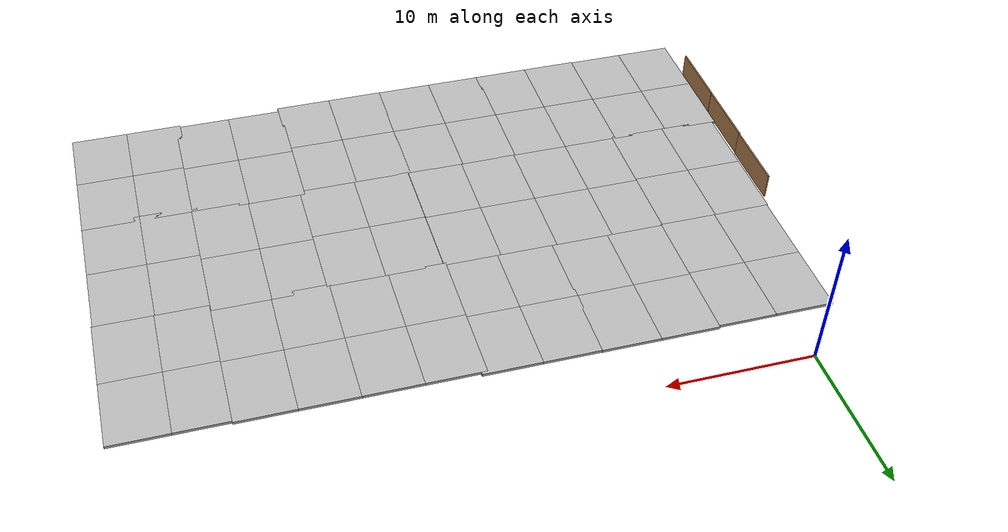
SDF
<sdf version="1.7">
 <world name="default">
  <light name="sun" type="directional">
   <pose>0 0 10 0 -0 0</pose>
   <diffuse>0.8 0.8 0.8 1</diffuse>
   <specular>0.2 0.2 0.2 1</specular>
   <attenuation>
    <range>1000</range>
    <constant>0.9</constant>
    <linear>0.01</linear>
    <quadratic>0.001</quadratic>
   </attenuation>
   <direction>-0.5 0.1 -0.9</direction>
   <spot><inner_angle>0</inner_angle><outer_angle>0</outer_angle><falloff>0</falloff></spot>
  </light>
  <gravity>0 0 -9.8</gravity>
  <magnetic_field>6e-06 2.3e-05 -4.2e-05</magnetic_field>
  <atmosphere type="adiabatic"/>
  <physics type="ode">
   <max_step_size>0.001</max_step_size>
   <real_time_factor>1</real_time_factor>
   <real_time_update_rate>1000</real_time_update_rate>
  </physics>
  <scene><ambient>0.4 0.4 0.4 1</ambient><background>0.7 0.7 0.7 1</background><shadows>1</shadows></scene>
  <audio><device>default</device></audio>
  <spherical_coordinates>
   <surface_model>EARTH_WGS84</surface_model>
   <latitude_deg>0</latitude_deg>
   <longitude_deg>0</longitude_deg>
   <elevation>0</elevation>
   <heading_deg>0</heading_deg>
  </spherical_coordinates>
  <model name="fence">
   <static>1</static>
   <link name="link">
    <pose>0 0 0.915 0 -0 0</pose>
    <collision name="collision"><geometry><box><size>0.1 5 1.83</size></box></geometry></collision>
    <visual name="visual">
     <cast_shadows>0</cast_shadows>
     <geometry><box><size>0.1 5 1.83</size></box></geometry>
     <material>
      <script>
       <uri>https://fuel.ignitionrobotics.org/1.0/athackst/models/fence/2/files/materials/scripts</uri>
       <uri>https://fuel.ignitionrobotics.org/1.0/athackst/models/fence/2/files/materials/textures</uri>
       <name>Fence/WoodBoarding</name>
      </script>
     </material>
    </visual>
   </link>
   <pose>-3.58315 -27.4704 0 0 -0 0</pose>
  </model>
  <model name="mud_box">
   <static>1</static>
   <link name="link">
    <collision name="collision"><geometry><box><size>8 10 0.2</size></box></geometry></collision>
    <visual name="visual_1">
     <pose>-2 2.5 0 0 -0 0</pose>
     <cast_shadows>0</cast_shadows>
     <geometry><box><size>4 5 0.2</size></box></geometry>
     <material>
      <script>
       <uri>model://mud_box/materials/scripts</uri>
       <uri>model://mud_box/materials/textures</uri>
       <name>vrc/mud</name>
      </script>
     </material>
    </visual>
    <visual name="visual_2">
     <pose>2 2.5 0 0 -0 0</pose>
     <cast_shadows>0</cast_shadows>
     <geometry><box><size>4 5 0.2</size></box></geometry>
     <material>
      <script>
       <uri>model://mud_box/materials/scripts</uri>
       <uri>model://mud_box/materials/textures</uri>
       <name>vrc/mud</name>
      </script>
     </material>
    </visual>
    <visual name="visual_3">
     <pose>2 -2.5 0 0 -0 0</pose>
     <cast_shadows>0</cast_shadows>
     <geometry><box><size>4 5 0.2</size></box></geometry>
     <material>
      <script>
       <uri>model://mud_box/materials/scripts</uri>
       <uri>model://mud_box/materials/textures</uri>
       <name>vrc/mud</name>
      </script>
     </material>
    </visual>
    <visual name="visual_4">
     <pose>-2 -2.5 0 0 -0 0</pose>
     <cast_shadows>0</cast_shadows>
     <geometry><box><size>4 5 0.2</size></box></geometry>
     <material>
      <script>
       <uri>model://mud_box/materials/scripts</uri>
       <uri>model://mud_box/materials/textures</uri>
       <name>vrc/mud</name>
      </script>
     </material>
    </visual>
   </link>
   <pose>16.2912 -28.7396 0 0 -0 0</pose>
  </model>
  <model name="mud_box_clone">
   <static>1</static>
   <link name="link">
    <collision name="collision"><geometry><box><size>8 10 0.2</size></box></geometry></collision>
    <visual name="visual_1">
     <pose>-2 2.5 0 0 -0 0</pose>
     <cast_shadows>0</cast_shadows>
     <geometry><box><size>4 5 0.2</size></box></geometry>
     <material>
      <script>
       <uri>model://mud_box/materials/scripts</uri>
       <uri>model://mud_box/materials/textures</uri>
       <name>vrc/mud</name>
      </script>
     </material>
    </visual>
    <visual name="visual_2">
     <pose>2 2.5 0 0 -0 0</pose>
     <cast_shadows>0</cast_shadows>
     <geometry><box><size>4 5 0.2</size></box></geometry>
     <material>
      <script>
       <uri>model://mud_box/materials/scripts</uri>
       <uri>model://mud_box/materials/textures</uri>
       <name>vrc/mud</name>
      </script>
     </material>
    </visual>
    <visual name="visual_3">
     <pose>2 -2.5 0 0 -0 0</pose>
     <cast_shadows>0</cast_shadows>
     <geometry><box><size>4 5 0.2</size></box></geometry>
     <material>
      <script>
       <uri>model://mud_box/materials/scripts</uri>
       <uri>model://mud_box/materials/textures</uri>
       <name>vrc/mud</name>
      </script>
     </material>
    </visual>
    <visual name="visual_4">
     <pose>-2 -2.5 0 0 -0 0</pose>
     <cast_shadows>0</cast_shadows>
     <geometry><box><size>4 5 0.2</size></box></geometry>
     <material>
      <script>
       <uri>model://mud_box/materials/scripts</uri>
       <uri>model://mud_box/materials/textures</uri>
       <name>vrc/mud</name>
      </script>
     </material>
    </visual>
   </link>
   <pose>8.40512 -28.7492 0 0 -0 0</pose>
  </model>
  <model name="mud_box_clone_0">
   <static>1</static>
   <link name="link">
    <collision name="collision"><geometry><box><size>8 10 0.2</size></box></geometry></collision>
    <visual name="visual_1">
     <pose>-2 2.5 0 0 -0 0</pose>
     <cast_shadows>0</cast_shadows>
     <geometry><box><size>4 5 0.2</size></box></geometry>
     <material>
      <script>
       <uri>model://mud_box/materials/scripts</uri>
       <uri>model://mud_box/materials/textures</uri>
       <name>vrc/mud</name>
      </script>
     </material>
    </visual>
    <visual name="visual_2">
     <pose>2 2.5 0 0 -0 0</pose>
     <cast_shadows>0</cast_shadows>
     <geometry><box><size>4 5 0.2</size></box></geometry>
     <material>
      <script>
       <uri>model://mud_box/materials/scripts</uri>
       <uri>model://mud_box/materials/textures</uri>
       <name>vrc/mud</name>
      </script>
     </material>
    </visual>
    <visual name="visual_3">
     <pose>2 -2.5 0 0 -0 0</pose>
     <cast_shadows>0</cast_shadows>
     <geometry><box><size>4 5 0.2</size></box></geometry>
     <material>
      <script>
       <uri>model://mud_box/materials/scripts</uri>
       <uri>model://mud_box/materials/textures</uri>
       <name>vrc/mud</name>
      </script>
     </material>
    </visual>
    <visual name="visual_4">
     <pose>-2 -2.5 0 0 -0 0</pose>
     <cast_shadows>0</cast_shadows>
     <geometry><box><size>4 5 0.2</size></box></geometry>
     <material>
      <script>
       <uri>model://mud_box/materials/scripts</uri>
       <uri>model://mud_box/materials/textures</uri>
       <name>vrc/mud</name>
      </script>
     </material>
    </visual>
   </link>
   <pose>0.464222 -28.6974 0 0 -0 0</pose>
  </model>
  <model name="mud_box_clone_1">
   <static>1</static>
   <link name="link">
    <collision name="collision"><geometry><box><size>8 10 0.2</size></box></geometry></collision>
    <visual name="visual_1">
     <pose>-2 2.5 0 0 -0 0</pose>
     <cast_shadows>0</cast_shadows>
     <geometry><box><size>4 5 0.2</size></box></geometry>
     <material>
      <script>
       <uri>model://mud_box/materials/scripts</uri>
       <uri>model://mud_box/materials/textures</uri>
       <name>vrc/mud</name>
      </script>
     </material>
    </visual>
    <visual name="visual_2">
     <pose>2 2.5 0 0 -0 0</pose>
     <cast_shadows>0</cast_shadows>
     <geometry><box><size>4 5 0.2</size></box></geometry>
     <material>
      <script>
       <uri>model://mud_box/materials/scripts</uri>
       <uri>model://mud_box/materials/textures</uri>
       <name>vrc/mud</name>
      </script>
     </material>
    </visual>
    <visual name="visual_3">
     <pose>2 -2.5 0 0 -0 0</pose>
     <cast_shadows>0</cast_shadows>
     <geometry><box><size>4 5 0.2</size></box></geometry>
     <material>
      <script>
       <uri>model://mud_box/materials/scripts</uri>
       <uri>model://mud_box/materials/textures</uri>
       <name>vrc/mud</name>
      </script>
     </material>
    </visual>
    <visual name="visual_4">
     <pose>-2 -2.5 0 0 -0 0</pose>
     <cast_shadows>0</cast_shadows>
     <geometry><box><size>4 5 0.2</size></box></geometry>
     <material>
      <script>
       <uri>model://mud_box/materials/scripts</uri>
       <uri>model://mud_box/materials/textures</uri>
       <name>vrc/mud</name>
      </script>
     </material>
    </visual>
   </link>
   <pose>0.695198 -18.8768 0 0 -0 0</pose>
  </model>
  <model name="mud_box_clone_2">
   <static>1</static>
   <link name="link">
    <collision name="collision"><geometry><box><size>8 10 0.2</size></box></geometry></collision>
    <visual name="visual_1">
     <pose>-2 2.5 0 0 -0 0</pose>
     <cast_shadows>0</cast_shadows>
     <geometry><box><size>4 5 0.2</size></box></geometry>
     <material>
      <script>
       <uri>model://mud_box/materials/scripts</uri>
       <uri>model://mud_box/materials/textures</uri>
       <name>vrc/mud</name>
      </script>
     </material>
    </visual>
    <visual name="visual_2">
     <pose>2 2.5 0 0 -0 0</pose>
     <cast_shadows>0</cast_shadows>
     <geometry><box><size>4 5 0.2</size></box></geometry>
     <material>
      <script>
       <uri>model://mud_box/materials/scripts</uri>
       <uri>model://mud_box/materials/textures</uri>
       <name>vrc/mud</name>
      </script>
     </material>
    </visual>
    <visual name="visual_3">
     <pose>2 -2.5 0 0 -0 0</pose>
     <cast_shadows>0</cast_shadows>
     <geometry><box><size>4 5 0.2</size></box></geometry>
     <material>
      <script>
       <uri>model://mud_box/materials/scripts</uri>
       <uri>model://mud_box/materials/textures</uri>
       <name>vrc/mud</name>
      </script>
     </material>
    </visual>
    <visual name="visual_4">
     <pose>-2 -2.5 0 0 -0 0</pose>
     <cast_shadows>0</cast_shadows>
     <geometry><box><size>4 5 0.2</size></box></geometry>
     <material>
      <script>
       <uri>model://mud_box/materials/scripts</uri>
       <uri>model://mud_box/materials/textures</uri>
       <name>vrc/mud</name>
      </script>
     </material>
    </visual>
   </link>
   <pose>8.40785 -18.7618 0 0 -0 0</pose>
  </model>
  <model name="mud_box_clone_3">
   <static>1</static>
   <link name="link">
    <collision name="collision"><geometry><box><size>8 10 0.2</size></box></geometry></collision>
    <visual name="visual_1">
     <pose>-2 2.5 0 0 -0 0</pose>
     <cast_shadows>0</cast_shadows>
     <geometry><box><size>4 5 0.2</size></box></geometry>
     <material>
      <script>
       <uri>model://mud_box/materials/scripts</uri>
       <uri>model://mud_box/materials/textures</uri>
       <name>vrc/mud</name>
      </script>
     </material>
    </visual>
    <visual name="visual_2">
     <pose>2 2.5 0 0 -0 0</pose>
     <cast_shadows>0</cast_shadows>
     <geometry><box><size>4 5 0.2</size></box></geometry>
     <material>
      <script>
       <uri>model://mud_box/materials/scripts</uri>
       <uri>model://mud_box/materials/textures</uri>
       <name>vrc/mud</name>
      </script>
     </material>
    </visual>
    <visual name="visual_3">
     <pose>2 -2.5 0 0 -0 0</pose>
     <cast_shadows>0</cast_shadows>
     <geometry><box><size>4 5 0.2</size></box></geometry>
     <material>
      <script>
       <uri>model://mud_box/materials/scripts</uri>
       <uri>model://mud_box/materials/textures</uri>
       <name>vrc/mud</name>
      </script>
     </material>
    </visual>
    <visual name="visual_4">
     <pose>-2 -2.5 0 0 -0 0</pose>
     <cast_shadows>0</cast_shadows>
     <geometry><box><size>4 5 0.2</size></box></geometry>
     <material>
      <script>
       <uri>model://mud_box/materials/scripts</uri>
       <uri>model://mud_box/materials/textures</uri>
       <name>vrc/mud</name>
      </script>
     </material>
    </visual>
   </link>
   <pose>16.4026 -18.7743 0 0 -0 0</pose>
  </model>
  <model name="mud_box_clone_4">
   <static>1</static>
   <link name="link">
    <collision name="collision"><geometry><box><size>8 10 0.2</size></box></geometry></collision>
    <visual name="visual_1">
     <pose>-2 2.5 0 0 -0 0</pose>
     <cast_shadows>0</cast_shadows>
     <geometry><box><size>4 5 0.2</size></box></geometry>
     <material>
      <script>
       <uri>model://mud_box/materials/scripts</uri>
       <uri>model://mud_box/materials/textures</uri>
       <name>vrc/mud</name>
      </script>
     </material>
    </visual>
    <visual name="visual_2">
     <pose>2 2.5 0 0 -0 0</pose>
     <cast_shadows>0</cast_shadows>
     <geometry><box><size>4 5 0.2</size></box></geometry>
     <material>
      <script>
       <uri>model://mud_box/materials/scripts</uri>
       <uri>model://mud_box/materials/textures</uri>
       <name>vrc/mud</name>
      </script>
     </material>
    </visual>
    <visual name="visual_3">
     <pose>2 -2.5 0 0 -0 0</pose>
     <cast_shadows>0</cast_shadows>
     <geometry><box><size>4 5 0.2</size></box></geometry>
     <material>
      <script>
       <uri>model://mud_box/materials/scripts</uri>
       <uri>model://mud_box/materials/textures</uri>
       <name>vrc/mud</name>
      </script>
     </material>
    </visual>
    <visual name="visual_4">
     <pose>-2 -2.5 0 0 -0 0</pose>
     <cast_shadows>0</cast_shadows>
     <geometry><box><size>4 5 0.2</size></box></geometry>
     <material>
      <script>
       <uri>model://mud_box/materials/scripts</uri>
       <uri>model://mud_box/materials/textures</uri>
       <name>vrc/mud</name>
      </script>
     </material>
    </visual>
   </link>
   <pose>24.2442 -28.76 0 0 -0 0</pose>
  </model>
  <model name="mud_box_clone_5">
   <static>1</static>
   <link name="link">
    <collision name="collision"><geometry><box><size>8 10 0.2</size></box></geometry></collision>
    <visual name="visual_1">
     <pose>-2 2.5 0 0 -0 0</pose>
     <cast_shadows>0</cast_shadows>
     <geometry><box><size>4 5 0.2</size></box></geometry>
     <material>
      <script>
       <uri>model://mud_box/materials/scripts</uri>
       <uri>model://mud_box/materials/textures</uri>
       <name>vrc/mud</name>
      </script>
     </material>
    </visual>
    <visual name="visual_2">
     <pose>2 2.5 0 0 -0 0</pose>
     <cast_shadows>0</cast_shadows>
     <geometry><box><size>4 5 0.2</size></box></geometry>
     <material>
      <script>
       <uri>model://mud_box/materials/scripts</uri>
       <uri>model://mud_box/materials/textures</uri>
       <name>vrc/mud</name>
      </script>
     </material>
    </visual>
    <visual name="visual_3">
     <pose>2 -2.5 0 0 -0 0</pose>
     <cast_shadows>0</cast_shadows>
     <geometry><box><size>4 5 0.2</size></box></geometry>
     <material>
      <script>
       <uri>model://mud_box/materials/scripts</uri>
       <uri>model://mud_box/materials/textures</uri>
       <name>vrc/mud</name>
      </script>
     </material>
    </visual>
    <visual name="visual_4">
     <pose>-2 -2.5 0 0 -0 0</pose>
     <cast_shadows>0</cast_shadows>
     <geometry><box><size>4 5 0.2</size></box></geometry>
     <material>
      <script>
       <uri>model://mud_box/materials/scripts</uri>
       <uri>model://mud_box/materials/textures</uri>
       <name>vrc/mud</name>
      </script>
     </material>
    </visual>
   </link>
   <pose>24.4205 -18.835 0 0 -0 0</pose>
  </model>
  <model name="mud_box_clone_6">
   <static>1</static>
   <link name="link">
    <collision name="collision"><geometry><box><size>8 10 0.2</size></box></geometry></collision>
    <visual name="visual_1">
     <pose>-2 2.5 0 0 -0 0</pose>
     <cast_shadows>0</cast_shadows>
     <geometry><box><size>4 5 0.2</size></box></geometry>
     <material>
      <script>
       <uri>model://mud_box/materials/scripts</uri>
       <uri>model://mud_box/materials/textures</uri>
       <name>vrc/mud</name>
      </script>
     </material>
    </visual>
    <visual name="visual_2">
     <pose>2 2.5 0 0 -0 0</pose>
     <cast_shadows>0</cast_shadows>
     <geometry><box><size>4 5 0.2</size></box></geometry>
     <material>
      <script>
       <uri>model://mud_box/materials/scripts</uri>
       <uri>model://mud_box/materials/textures</uri>
       <name>vrc/mud</name>
      </script>
     </material>
    </visual>
    <visual name="visual_3">
     <pose>2 -2.5 0 0 -0 0</pose>
     <cast_shadows>0</cast_shadows>
     <geometry><box><size>4 5 0.2</size></box></geometry>
     <material>
      <script>
       <uri>model://mud_box/materials/scripts</uri>
       <uri>model://mud_box/materials/textures</uri>
       <name>vrc/mud</name>
      </script>
     </material>
    </visual>
    <visual name="visual_4">
     <pose>-2 -2.5 0 0 -0 0</pose>
     <cast_shadows>0</cast_shadows>
     <geometry><box><size>4 5 0.2</size></box></geometry>
     <material>
      <script>
       <uri>model://mud_box/materials/scripts</uri>
       <uri>model://mud_box/materials/textures</uri>
       <name>vrc/mud</name>
      </script>
     </material>
    </visual>
   </link>
   <pose>0.773735 -8.89263 0 0 -0 0</pose>
  </model>
  <model name="mud_box_clone_7">
   <static>1</static>
   <link name="link">
    <collision name="collision"><geometry><box><size>8 10 0.2</size></box></geometry></collision>
    <visual name="visual_1">
     <pose>-2 2.5 0 0 -0 0</pose>
     <cast_shadows>0</cast_shadows>
     <geometry><box><size>4 5 0.2</size></box></geometry>
     <material>
      <script>
       <uri>model://mud_box/materials/scripts</uri>
       <uri>model://mud_box/materials/textures</uri>
       <name>vrc/mud</name>
      </script>
     </material>
    </visual>
    <visual name="visual_2">
     <pose>2 2.5 0 0 -0 0</pose>
     <cast_shadows>0</cast_shadows>
     <geometry><box><size>4 5 0.2</size></box></geometry>
     <material>
      <script>
       <uri>model://mud_box/materials/scripts</uri>
       <uri>model://mud_box/materials/textures</uri>
       <name>vrc/mud</name>
      </script>
     </material>
    </visual>
    <visual name="visual_3">
     <pose>2 -2.5 0 0 -0 0</pose>
     <cast_shadows>0</cast_shadows>
     <geometry><box><size>4 5 0.2</size></box></geometry>
     <material>
      <script>
       <uri>model://mud_box/materials/scripts</uri>
       <uri>model://mud_box/materials/textures</uri>
       <name>vrc/mud</name>
      </script>
     </material>
    </visual>
    <visual name="visual_4">
     <pose>-2 -2.5 0 0 -0 0</pose>
     <cast_shadows>0</cast_shadows>
     <geometry><box><size>4 5 0.2</size></box></geometry>
     <material>
      <script>
       <uri>model://mud_box/materials/scripts</uri>
       <uri>model://mud_box/materials/textures</uri>
       <name>vrc/mud</name>
      </script>
     </material>
    </visual>
   </link>
   <pose>8.76429 -8.78377 0 0 -0 0</pose>
  </model>
  <model name="mud_box_clone_8">
   <static>1</static>
   <link name="link">
    <collision name="collision"><geometry><box><size>8 10 0.2</size></box></geometry></collision>
    <visual name="visual_1">
     <pose>-2 2.5 0 0 -0 0</pose>
     <cast_shadows>0</cast_shadows>
     <geometry><box><size>4 5 0.2</size></box></geometry>
     <material>
      <script>
       <uri>model://mud_box/materials/scripts</uri>
       <uri>model://mud_box/materials/textures</uri>
       <name>vrc/mud</name>
      </script>
     </material>
    </visual>
    <visual name="visual_2">
     <pose>2 2.5 0 0 -0 0</pose>
     <cast_shadows>0</cast_shadows>
     <geometry><box><size>4 5 0.2</size></box></geometry>
     <material>
      <script>
       <uri>model://mud_box/materials/scripts</uri>
       <uri>model://mud_box/materials/textures</uri>
       <name>vrc/mud</name>
      </script>
     </material>
    </visual>
    <visual name="visual_3">
     <pose>2 -2.5 0 0 -0 0</pose>
     <cast_shadows>0</cast_shadows>
     <geometry><box><size>4 5 0.2</size></box></geometry>
     <material>
      <script>
       <uri>model://mud_box/materials/scripts</uri>
       <uri>model://mud_box/materials/textures</uri>
       <name>vrc/mud</name>
      </script>
     </material>
    </visual>
    <visual name="visual_4">
     <pose>-2 -2.5 0 0 -0 0</pose>
     <cast_shadows>0</cast_shadows>
     <geometry><box><size>4 5 0.2</size></box></geometry>
     <material>
      <script>
       <uri>model://mud_box/materials/scripts</uri>
       <uri>model://mud_box/materials/textures</uri>
       <name>vrc/mud</name>
      </script>
     </material>
    </visual>
   </link>
   <pose>16.6594 -8.80504 0 0 -0 0</pose>
  </model>
  <model name="mud_box_clone_9">
   <static>1</static>
   <link name="link">
    <collision name="collision"><geometry><box><size>8 10 0.2</size></box></geometry></collision>
    <visual name="visual_1">
     <pose>-2 2.5 0 0 -0 0</pose>
     <cast_shadows>0</cast_shadows>
     <geometry><box><size>4 5 0.2</size></box></geometry>
     <material>
      <script>
       <uri>model://mud_box/materials/scripts</uri>
       <uri>model://mud_box/materials/textures</uri>
       <name>vrc/mud</name>
      </script>
     </material>
    </visual>
    <visual name="visual_2">
     <pose>2 2.5 0 0 -0 0</pose>
     <cast_shadows>0</cast_shadows>
     <geometry><box><size>4 5 0.2</size></box></geometry>
     <material>
      <script>
       <uri>model://mud_box/materials/scripts</uri>
       <uri>model://mud_box/materials/textures</uri>
       <name>vrc/mud</name>
      </script>
     </material>
    </visual>
    <visual name="visual_3">
     <pose>2 -2.5 0 0 -0 0</pose>
     <cast_shadows>0</cast_shadows>
     <geometry><box><size>4 5 0.2</size></box></geometry>
     <material>
      <script>
       <uri>model://mud_box/materials/scripts</uri>
       <uri>model://mud_box/materials/textures</uri>
       <name>vrc/mud</name>
      </script>
     </material>
    </visual>
    <visual name="visual_4">
     <pose>-2 -2.5 0 0 -0 0</pose>
     <cast_shadows>0</cast_shadows>
     <geometry><box><size>4 5 0.2</size></box></geometry>
     <material>
      <script>
       <uri>model://mud_box/materials/scripts</uri>
       <uri>model://mud_box/materials/textures</uri>
       <name>vrc/mud</name>
      </script>
     </material>
    </visual>
   </link>
   <pose>24.2449 -8.9974 0 0 -0 0</pose>
  </model>
  <model name="mud_box_clone_10">
   <static>1</static>
   <link name="link">
    <collision name="collision"><geometry><box><size>8 10 0.2</size></box></geometry></collision>
    <visual name="visual_1">
     <pose>-2 2.5 0 0 -0 0</pose>
     <cast_shadows>0</cast_shadows>
     <geometry><box><size>4 5 0.2</size></box></geometry>
     <material>
      <script>
       <uri>model://mud_box/materials/scripts</uri>
       <uri>model://mud_box/materials/textures</uri>
       <name>vrc/mud</name>
      </script>
     </material>
    </visual>
    <visual name="visual_2">
     <pose>2 2.5 0 0 -0 0</pose>
     <cast_shadows>0</cast_shadows>
     <geometry><box><size>4 5 0.2</size></box></geometry>
     <material>
      <script>
       <uri>model://mud_box/materials/scripts</uri>
       <uri>model://mud_box/materials/textures</uri>
       <name>vrc/mud</name>
      </script>
     </material>
    </visual>
    <visual name="visual_3">
     <pose>2 -2.5 0 0 -0 0</pose>
     <cast_shadows>0</cast_shadows>
     <geometry><box><size>4 5 0.2</size></box></geometry>
     <material>
      <script>
       <uri>model://mud_box/materials/scripts</uri>
       <uri>model://mud_box/materials/textures</uri>
       <name>vrc/mud</name>
      </script>
     </material>
    </visual>
    <visual name="visual_4">
     <pose>-2 -2.5 0 0 -0 0</pose>
     <cast_shadows>0</cast_shadows>
     <geometry><box><size>4 5 0.2</size></box></geometry>
     <material>
      <script>
       <uri>model://mud_box/materials/scripts</uri>
       <uri>model://mud_box/materials/textures</uri>
       <name>vrc/mud</name>
      </script>
     </material>
    </visual>
   </link>
   <pose>32.184 -8.99116 0 0 -0 0</pose>
  </model>
  <model name="mud_box_clone_11">
   <static>1</static>
   <link name="link">
    <collision name="collision"><geometry><box><size>8 10 0.2</size></box></geometry></collision>
    <visual name="visual_1">
     <pose>-2 2.5 0 0 -0 0</pose>
     <cast_shadows>0</cast_shadows>
     <geometry><box><size>4 5 0.2</size></box></geometry>
     <material>
      <script>
       <uri>model://mud_box/materials/scripts</uri>
       <uri>model://mud_box/materials/textures</uri>
       <name>vrc/mud</name>
      </script>
     </material>
    </visual>
    <visual name="visual_2">
     <pose>2 2.5 0 0 -0 0</pose>
     <cast_shadows>0</cast_shadows>
     <geometry><box><size>4 5 0.2</size></box></geometry>
     <material>
      <script>
       <uri>model://mud_box/materials/scripts</uri>
       <uri>model://mud_box/materials/textures</uri>
       <name>vrc/mud</name>
      </script>
     </material>
    </visual>
    <visual name="visual_3">
     <pose>2 -2.5 0 0 -0 0</pose>
     <cast_shadows>0</cast_shadows>
     <geometry><box><size>4 5 0.2</size></box></geometry>
     <material>
      <script>
       <uri>model://mud_box/materials/scripts</uri>
       <uri>model://mud_box/materials/textures</uri>
       <name>vrc/mud</name>
      </script>
     </material>
    </visual>
    <visual name="visual_4">
     <pose>-2 -2.5 0 0 -0 0</pose>
     <cast_shadows>0</cast_shadows>
     <geometry><box><size>4 5 0.2</size></box></geometry>
     <material>
      <script>
       <uri>model://mud_box/materials/scripts</uri>
       <uri>model://mud_box/materials/textures</uri>
       <name>vrc/mud</name>
      </script>
     </material>
    </visual>
   </link>
   <pose>32.1409 -18.5811 0 0 -0 0</pose>
  </model>
  <model name="mud_box_clone_12">
   <static>1</static>
   <link name="link">
    <collision name="collision"><geometry><box><size>8 10 0.2</size></box></geometry></collision>
    <visual name="visual_1">
     <pose>-2 2.5 0 0 -0 0</pose>
     <cast_shadows>0</cast_shadows>
     <geometry><box><size>4 5 0.2</size></box></geometry>
     <material>
      <script>
       <uri>model://mud_box/materials/scripts</uri>
       <uri>model://mud_box/materials/textures</uri>
       <name>vrc/mud</name>
      </script>
     </material>
    </visual>
    <visual name="visual_2">
     <pose>2 2.5 0 0 -0 0</pose>
     <cast_shadows>0</cast_shadows>
     <geometry><box><size>4 5 0.2</size></box></geometry>
     <material>
      <script>
       <uri>model://mud_box/materials/scripts</uri>
       <uri>model://mud_box/materials/textures</uri>
       <name>vrc/mud</name>
      </script>
     </material>
    </visual>
    <visual name="visual_3">
     <pose>2 -2.5 0 0 -0 0</pose>
     <cast_shadows>0</cast_shadows>
     <geometry><box><size>4 5 0.2</size></box></geometry>
     <material>
      <script>
       <uri>model://mud_box/materials/scripts</uri>
       <uri>model://mud_box/materials/textures</uri>
       <name>vrc/mud</name>
      </script>
     </material>
    </visual>
    <visual name="visual_4">
     <pose>-2 -2.5 0 0 -0 0</pose>
     <cast_shadows>0</cast_shadows>
     <geometry><box><size>4 5 0.2</size></box></geometry>
     <material>
      <script>
       <uri>model://mud_box/materials/scripts</uri>
       <uri>model://mud_box/materials/textures</uri>
       <name>vrc/mud</name>
      </script>
     </material>
    </visual>
   </link>
   <pose>32.0883 -28.377 0 0 -0 0</pose>
  </model>
  <model name="mud_box_clone_13">
   <static>1</static>
   <link name="link">
    <collision name="collision"><geometry><box><size>8 10 0.2</size></box></geometry></collision>
    <visual name="visual_1">
     <pose>-2 2.5 0 0 -0 0</pose>
     <cast_shadows>0</cast_shadows>
     <geometry><box><size>4 5 0.2</size></box></geometry>
     <material>
      <script>
       <uri>model://mud_box/materials/scripts</uri>
       <uri>model://mud_box/materials/textures</uri>
       <name>vrc/mud</name>
      </script>
     </material>
    </visual>
    <visual name="visual_2">
     <pose>2 2.5 0 0 -0 0</pose>
     <cast_shadows>0</cast_shadows>
     <geometry><box><size>4 5 0.2</size></box></geometry>
     <material>
      <script>
       <uri>model://mud_box/materials/scripts</uri>
       <uri>model://mud_box/materials/textures</uri>
       <name>vrc/mud</name>
      </script>
     </material>
    </visual>
    <visual name="visual_3">
     <pose>2 -2.5 0 0 -0 0</pose>
     <cast_shadows>0</cast_shadows>
     <geometry><box><size>4 5 0.2</size></box></geometry>
     <material>
      <script>
       <uri>model://mud_box/materials/scripts</uri>
       <uri>model://mud_box/materials/textures</uri>
       <name>vrc/mud</name>
      </script>
     </material>
    </visual>
    <visual name="visual_4">
     <pose>-2 -2.5 0 0 -0 0</pose>
     <cast_shadows>0</cast_shadows>
     <geometry><box><size>4 5 0.2</size></box></geometry>
     <material>
      <script>
       <uri>model://mud_box/materials/scripts</uri>
       <uri>model://mud_box/materials/textures</uri>
       <name>vrc/mud</name>
      </script>
     </material>
    </visual>
   </link>
   <pose>39.7254 -28.545 0 0 -0 0</pose>
  </model>
  <model name="mud_box_clone_14">
   <static>1</static>
   <link name="link">
    <collision name="collision"><geometry><box><size>8 10 0.2</size></box></geometry></collision>
    <visual name="visual_1">
     <pose>-2 2.5 0 0 -0 0</pose>
     <cast_shadows>0</cast_shadows>
     <geometry><box><size>4 5 0.2</size></box></geometry>
     <material>
      <script>
       <uri>model://mud_box/materials/scripts</uri>
       <uri>model://mud_box/materials/textures</uri>
       <name>vrc/mud</name>
      </script>
     </material>
    </visual>
    <visual name="visual_2">
     <pose>2 2.5 0 0 -0 0</pose>
     <cast_shadows>0</cast_shadows>
     <geometry><box><size>4 5 0.2</size></box></geometry>
     <material>
      <script>
       <uri>model://mud_box/materials/scripts</uri>
       <uri>model://mud_box/materials/textures</uri>
       <name>vrc/mud</name>
      </script>
     </material>
    </visual>
    <visual name="visual_3">
     <pose>2 -2.5 0 0 -0 0</pose>
     <cast_shadows>0</cast_shadows>
     <geometry><box><size>4 5 0.2</size></box></geometry>
     <material>
      <script>
       <uri>model://mud_box/materials/scripts</uri>
       <uri>model://mud_box/materials/textures</uri>
       <name>vrc/mud</name>
      </script>
     </material>
    </visual>
    <visual name="visual_4">
     <pose>-2 -2.5 0 0 -0 0</pose>
     <cast_shadows>0</cast_shadows>
     <geometry><box><size>4 5 0.2</size></box></geometry>
     <material>
      <script>
       <uri>model://mud_box/materials/scripts</uri>
       <uri>model://mud_box/materials/textures</uri>
       <name>vrc/mud</name>
      </script>
     </material>
    </visual>
   </link>
   <pose>39.7286 -19.0075 0 0 -0 0</pose>
  </model>
  <model name="mud_box_clone_15">
   <static>1</static>
   <link name="link">
    <collision name="collision"><geometry><box><size>8 10 0.2</size></box></geometry></collision>
    <visual name="visual_1">
     <pose>-2 2.5 0 0 -0 0</pose>
     <cast_shadows>0</cast_shadows>
     <geometry><box><size>4 5 0.2</size></box></geometry>
     <material>
      <script>
       <uri>model://mud_box/materials/scripts</uri>
       <uri>model://mud_box/materials/textures</uri>
       <name>vrc/mud</name>
      </script>
     </material>
    </visual>
    <visual name="visual_2">
     <pose>2 2.5 0 0 -0 0</pose>
     <cast_shadows>0</cast_shadows>
     <geometry><box><size>4 5 0.2</size></box></geometry>
     <material>
      <script>
       <uri>model://mud_box/materials/scripts</uri>
       <uri>model://mud_box/materials/textures</uri>
       <name>vrc/mud</name>
      </script>
     </material>
    </visual>
    <visual name="visual_3">
     <pose>2 -2.5 0 0 -0 0</pose>
     <cast_shadows>0</cast_shadows>
     <geometry><box><size>4 5 0.2</size></box></geometry>
     <material>
      <script>
       <uri>model://mud_box/materials/scripts</uri>
       <uri>model://mud_box/materials/textures</uri>
       <name>vrc/mud</name>
      </script>
     </material>
    </visual>
    <visual name="visual_4">
     <pose>-2 -2.5 0 0 -0 0</pose>
     <cast_shadows>0</cast_shadows>
     <geometry><box><size>4 5 0.2</size></box></geometry>
     <material>
      <script>
       <uri>model://mud_box/materials/scripts</uri>
       <uri>model://mud_box/materials/textures</uri>
       <name>vrc/mud</name>
      </script>
     </material>
    </visual>
   </link>
   <pose>39.7867 -9.09285 0 0 -0 0</pose>
  </model>
  <model name="fence_clone">
   <static>1</static>
   <link name="link">
    <pose>0 0 0.915 0 -0 0</pose>
    <collision name="collision"><geometry><box><size>0.1 5 1.83</size></box></geometry></collision>
    <visual name="visual">
     <cast_shadows>0</cast_shadows>
     <geometry><box><size>0.1 5 1.83</size></box></geometry>
     <material>
      <script>
       <uri>https://fuel.ignitionrobotics.org/1.0/athackst/models/fence/2/files/materials/scripts</uri>
       <uri>https://fuel.ignitionrobotics.org/1.0/athackst/models/fence/2/files/materials/textures</uri>
       <name>Fence/WoodBoarding</name>
      </script>
     </material>
    </visual>
   </link>
   <pose>-3.57447 -22.4193 0 0 -0 0</pose>
  </model>
  <model name="fence_clone_0">
   <static>1</static>
   <link name="link">
    <pose>0 0 0.915 0 -0 0</pose>
    <collision name="collision"><geometry><box><size>0.1 5 1.83</size></box></geometry></collision>
    <visual name="visual">
     <cast_shadows>0</cast_shadows>
     <geometry><box><size>0.1 5 1.83</size></box></geometry>
     <material>
      <script>
       <uri>https://fuel.ignitionrobotics.org/1.0/athackst/models/fence/2/files/materials/scripts</uri>
       <uri>https://fuel.ignitionrobotics.org/1.0/athackst/models/fence/2/files/materials/textures</uri>
       <name>Fence/WoodBoarding</name>
      </script>
     </material>
    </visual>
   </link>
   <pose>-3.5352 -17.3886 0 0 -0 0</pose>
  </model>
 </world>
</sdf>
